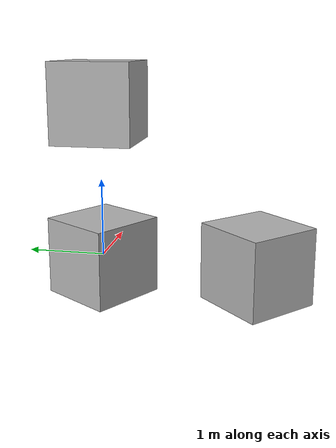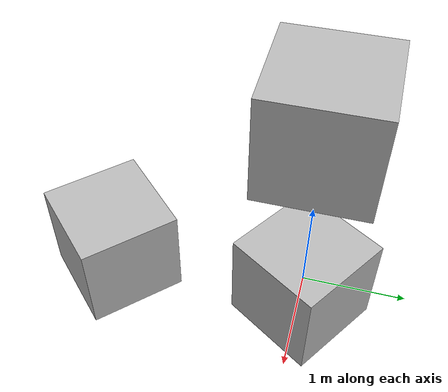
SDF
<?xml version="1.0"?>
<sdf version="1.7">
    <world name="default">
        <model name="cube1">
            <pose>0 0 0 0 0 1</pose>
            <include>
                <uri>model://cube</uri>
            </include>
        </model>
        <model name="cube2">
            <pose>0 -2 0 0 0 0.785</pose>
            <include>
                <uri>model://cube</uri>
            </include>
        </model>
        <model name="cube3">
            <pose>0 0 2 0 0 0</pose>
            <include>
              <uri>model://cube</uri>
            </include>
          </model>
        <model name="camera_model">
            <pose>2 0 0 0 0 3.14</pose>
            <static>true</static>
            <link name="camera_link">
                <sensor type="depth" name="camera1">
                    <update_rate>50</update_rate>
                    <visualize>true</visualize>
                    <camera>
                        <horizontal_fov>1.92</horizontal_fov>
                        <image>
                            <width>640</width>
                            <height>480</height>
                            <format>B8G8R8</format>
                        </image>
                        <depth_camera></depth_camera>
                        <clip>
                            <near>0.02</near>
                            <far>300</far>
                        </clip>
                        <noise>
                            <type>gaussian</type>

                            <mean>0.0</mean>
                            <stddev>0.007</stddev>
                        </noise>
                    </camera>
                    <plugin name="camera_controller" filename="libgazebo_ros_camera.so">
                        <ros>
                            <namespace>triton/gazebo_drivers</namespace>
                        </ros>
                        <camera_name>front_camera</camera_name>
                        <min_depth>0.1</min_depth>
                        <max_depth>500</max_depth>
                    </plugin>
                </sensor>
            </link>
        </model>
        <grid>0</grid>
    </world>
</sdf>

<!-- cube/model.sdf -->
<sdf version="1.7">
    <model name="cube">
        <link name="base_link">
            <pose>0 0 0 0 0 0</pose>
            <gravity>0</gravity>
            <inertial>
                <mass>1</mass>
            </inertial>
            <visual name='cube_visual'>
                <geometry>
                    <box>
                        <size>1 1 1</size>
                    </box>
                </geometry>
            </visual>
            <collision name='cube_collision'>
                <geometry>
                    <box>
                        <size>1 1 1</size>
                    </box>
                </geometry>
            </collision>
        </link>
        <plugin name="gazebo_force_controller" filename="libgazebo_ros_force.so">
            <ros>
                <namespace>/triton/gazebo_drivers</namespace>
                <remapping>gazebo_ros_force:=force</remapping>
            </ros>
            <link_name>base_link</link_name>
            <force_frame>world</force_frame>
        </plugin>
        <plugin name="hydrodynamic_forces" filename="libhydrodynamics_plugin.so"/>
    </model>
</sdf>
